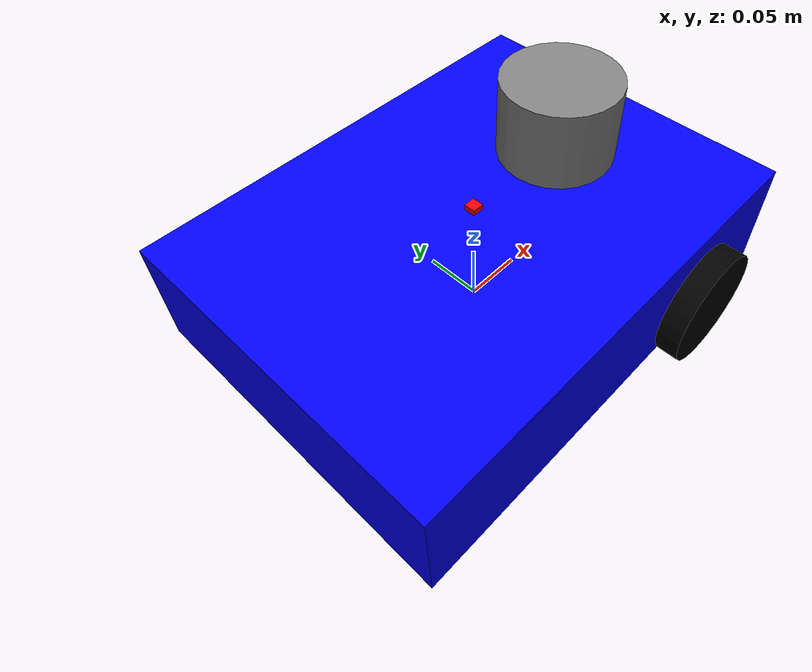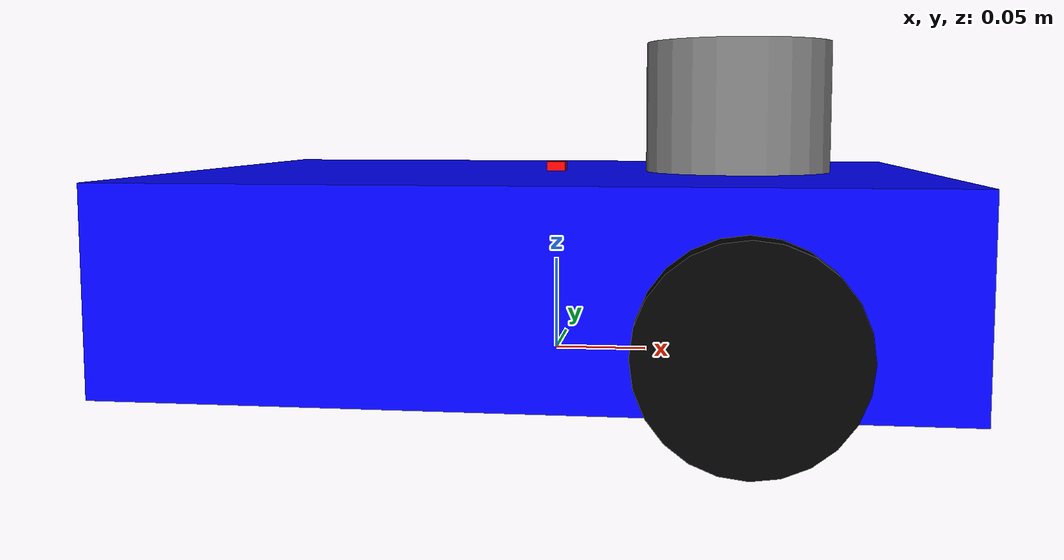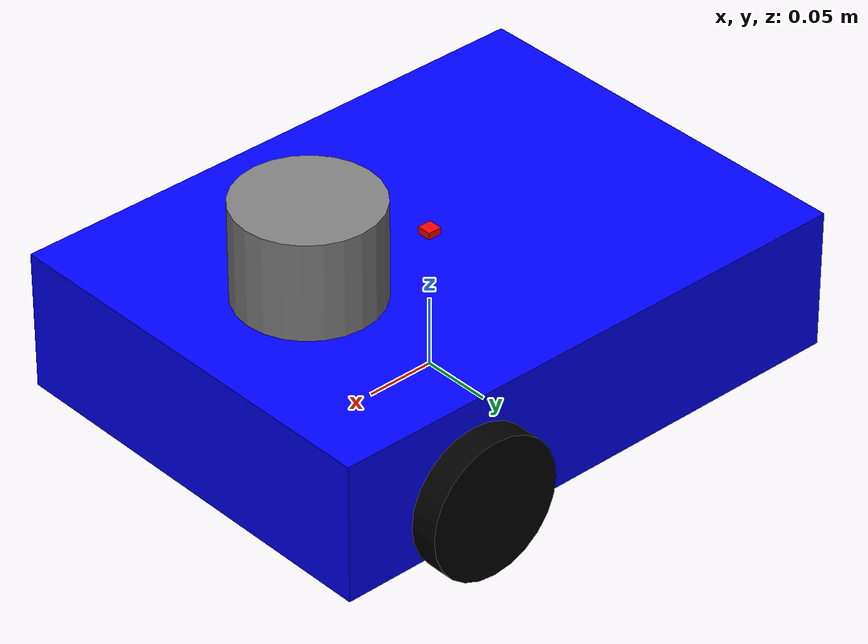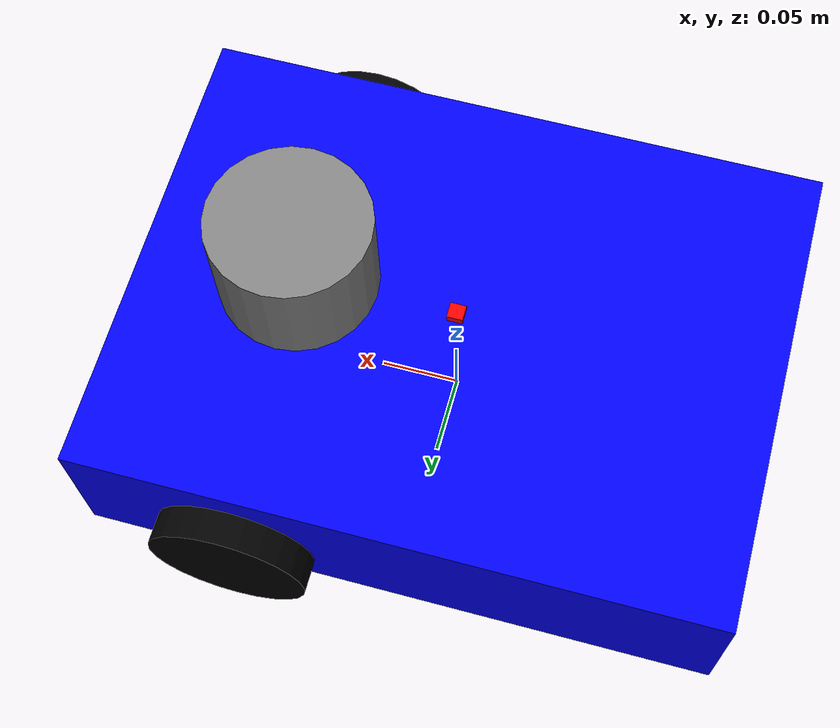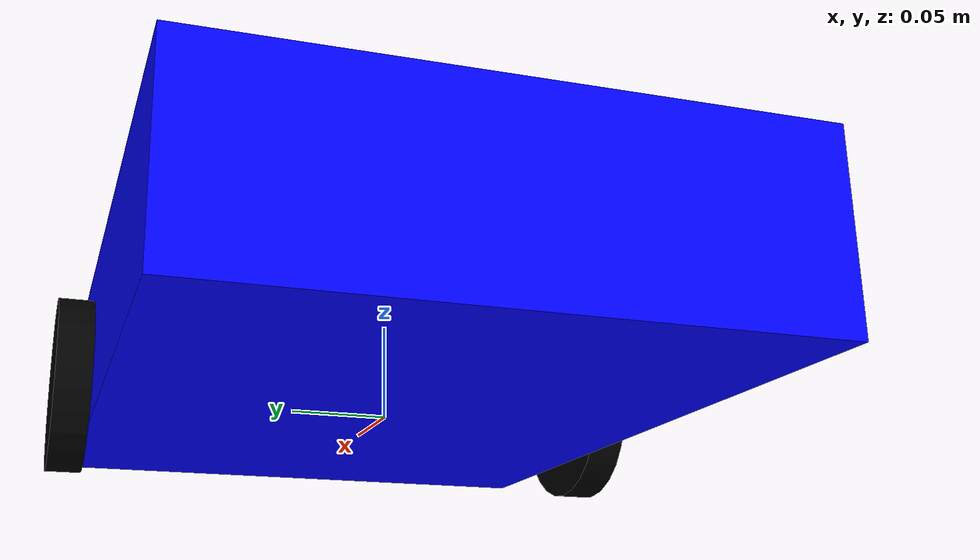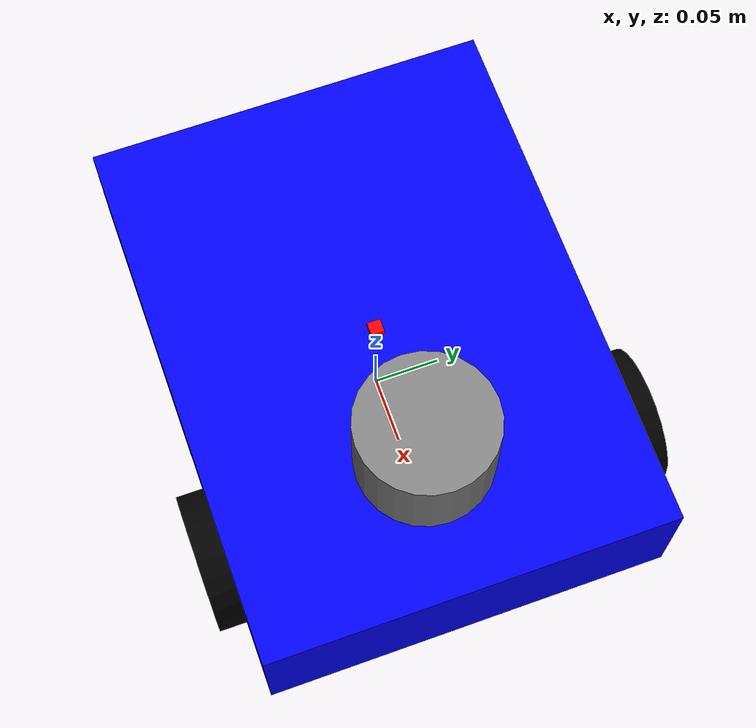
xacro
<?xml version="1.0"?>
<robot xmlns:xacro="http://www.ros.org/wiki/xacro" name="mobile_3d_lidar_robot">

  <!-- ==================== 参数定义 ==================== -->
  <xacro:property name="base_len" value="0.4"/>
  <xacro:property name="base_width" value="0.3"/>
  <xacro:property name="base_height" value="0.1"/>
  <xacro:property name="wheel_radius" value="0.05"/>
  <xacro:property name="wheel_width" value="0.02"/>

  <!-- ==================== 机器人本体 ==================== -->

  <!-- Base Footprint (用于导航的投影中心) -->
  <link name="base_footprint"/>

  <joint name="base_joint" type="fixed">
    <parent link="base_footprint"/>
    <child link="base_link"/>
    <origin xyz="0 0 ${wheel_radius}" rpy="0 0 0"/>
  </joint>

  <!-- Base Link (车体) -->
  <link name="base_link">
    <visual>
      <geometry>
        <box size="${base_len} ${base_width} ${base_height}"/>
      </geometry>
      <material name="blue">
        <color rgba="0 0 1 1"/>
      </material>
    </visual>
    <collision>
      <geometry>
        <box size="${base_len} ${base_width} ${base_height}"/>
      </geometry>
    </collision>
    <inertial>
      <mass value="5.0"/>
      <inertia ixx="0.1" ixy="0" ixz="0" iyy="0.1" iyz="0" izz="0.1"/>
    </inertial>
  </link>

  <!-- ==================== 驱动轮系统 ==================== -->

  <!-- 宏定义：创建轮子 -->
  <xacro:macro name="wheel" params="prefix reflect">
    <link name="${prefix}_wheel">
      <visual>
        <geometry>
          <cylinder radius="${wheel_radius}" length="${wheel_width}"/>
        </geometry>
        <material name="black">
          <color rgba="0 0 0 1"/>
        </material>
      </visual>
      <collision>
        <geometry>
          <cylinder radius="${wheel_radius}" length="${wheel_width}"/>
        </geometry>
      </collision>
      <inertial>
        <mass value="0.5"/>
        <inertia ixx="0.01" ixy="0" ixz="0" iyy="0.01" iyz="0" izz="0.01"/>
      </inertial>
    </link>

    <joint name="${prefix}_wheel_joint" type="continuous">
      <parent link="base_link"/>
      <child link="${prefix}_wheel"/>
      <origin xyz="0.1 ${reflect * (base_width/2 + wheel_width/2)} -0.02" rpy="-1.5708 0 0"/>
      <axis xyz="0 0 1"/>
    </joint>
  </xacro:macro>

  <!-- 生成左右轮 -->
  <xacro:wheel prefix="left" reflect="1"/>
  <xacro:wheel prefix="right" reflect="-1"/>

  <!-- 万向轮 (支撑轮，防止车体由于重力翻倒) -->
  <link name="caster_wheel">
    <visual>
      <geometry>
        <sphere radius="0.03"/>
      </geometry>
      <material name="white">
        <color rgba="1 1 1 1"/>
      </material>
    </visual>
    <collision>
      <geometry>
        <sphere radius="0.03"/>
      </geometry>
      <surface>
        <friction>
          <ode>
            <mu>0.0</mu> <!-- 无摩擦，方便转动 -->
            <mu2>0.0</mu2>
          </ode>
        </friction>
      </surface>
    </collision>
    <inertial>
      <mass value="0.1"/>
      <inertia ixx="0.001" ixy="0" ixz="0" iyy="0.001" iyz="0" izz="0.001"/>
    </inertial>
  </link>

  <joint name="caster_joint" type="fixed">
    <parent link="base_link"/>
    <child link="caster_wheel"/>
    <origin xyz="-0.15 0 -0.02" rpy="0 0 0"/>
  </joint>

  <!-- ==================== 3D LiDAR (32线) ==================== -->

  <link name="velodyne_base_link">
    <visual>
      <geometry>
        <cylinder radius="0.05" length="0.07"/>
      </geometry>
      <material name="grey">
        <color rgba="0.5 0.5 0.5 1"/>
      </material>
    </visual>
    <collision>
      <geometry>
        <cylinder radius="0.05" length="0.07"/>
      </geometry>
    </collision>
    <inertial>
      <mass value="0.8"/>
      <inertia ixx="0.001" ixy="0" ixz="0" iyy="0.001" iyz="0" izz="0.001"/>
    </inertial>
  </link>

  <joint name="lidar_joint" type="fixed">
    <parent link="base_link"/>
    <child link="velodyne_base_link"/>
    <origin xyz="0.1 0 ${base_height/2 + 0.035}" rpy="0 0 0"/>
  </joint>

  <!-- Gazebo 3D LiDAR 插件配置 -->
<gazebo reference="velodyne_base_link">
    <!-- 如果在虚拟机中，请务必使用 type="ray" -->
    <sensor type="ray" name="velodyne-VLP16">
      <pose>0 0 0 0 0 0</pose>
      <visualize>false</visualize>
      <update_rate>10</update_rate>
      <ray>
        <scan>
          <horizontal>
            <samples>360</samples> <!-- 稍微降低采样数测试稳定性 -->
            <resolution>1</resolution>
            <min_angle>-3.14159</min_angle>
            <max_angle>3.14159</max_angle>
          </horizontal>
          <vertical>
            <samples>32</samples> <!-- VLP-16通常是16线，你要32线就写32 -->
            <resolution>1</resolution>
            <min_angle>-0.261799</min_angle>
            <max_angle>0.261799</max_angle>
          </vertical>
        </scan>
        <range>
          <min>0.3</min>
          <max>100.0</max>
          <resolution>0.001</resolution>
        </range>
        <noise>
          <type>gaussian</type>
          <mean>0.0</mean>
          <stddev>0.0</stddev>
        </noise>
      </ray>
      <!-- 使用标准 Velodyne 插件 -->
      <plugin name="gazebo_ros_laser_controller" filename="libgazebo_ros_velodyne_laser.so">
        <topicName>/velodyne_points</topicName>
        <frameName>velodyne_base_link</frameName>
        <min_range>0.9</min_range>
        <max_range>130.0</max_range>
        <gaussianNoise>0.008</gaussianNoise>
        <!-- 关键：有些版本需要这个参数来激活 PointCloud2 输出 -->
        <organize_cloud>false</organize_cloud>
      </plugin>
    </sensor>
  </gazebo>

  <!-- ==================== 差速驱动插件 (控制移动) ==================== -->
  <gazebo>
    <plugin name="differential_drive_controller" filename="libgazebo_ros_diff_drive.so">
      <updateRate>50</updateRate>
      <leftJoint>left_wheel_joint</leftJoint>
      <rightJoint>right_wheel_joint</rightJoint>
      <wheelSeparation>${base_width + wheel_width}</wheelSeparation>
      <wheelDiameter>${wheel_radius * 2}</wheelDiameter>
      <wheelAcceleration>1.0</wheelAcceleration>
      <wheelTorque>20</wheelTorque>
      <commandTopic>cmd_vel</commandTopic>
      <odometryTopic>odom</odometryTopic>
      <odometryFrame>odom</odometryFrame>
      <robotBaseFrame>base_footprint</robotBaseFrame>
      <publishWheelTF>false</publishWheelTF>
      <publishOdomTF>false</publishOdomTF>
      <publishWheelJointState>true</publishWheelJointState>
      <legacyMode>false</legacyMode>
    </plugin>
  </gazebo>

  <!-- ==================== IMU 传感器 ==================== -->
  <link name="imu_link">
    <visual>
      <geometry>
        <box size="0.01 0.01 0.01"/>
      </geometry>
      <material name="red">
        <color rgba="1 0 0 1"/>
      </material>
    </visual>
    <inertial>
      <mass value="0.01"/>
      <inertia ixx="0.000001" ixy="0" ixz="0" iyy="0.000001" iyz="0" izz="0.000001"/>
    </inertial>
  </link>

  <joint name="imu_joint" type="fixed">
    <parent link="base_link"/>
    <child link="imu_link"/>
    <origin xyz="0 0 0.05" rpy="0 0 0"/>
  </joint>

  <gazebo reference="imu_link">
    <sensor name="imu_sensor" type="imu">
      <always_on>true</always_on>
      <update_rate>200</update_rate> <!-- IMU typically has a higher update rate -->
      <visualize>true</visualize>
      <topic>/imu/data</topic>
      <plugin filename="libgazebo_ros_imu_sensor.so" name="imu_plugin">
        <topicName>/imu/data</topicName>
        <updateRateHZ>200.0</updateRateHZ>
        <gaussianNoise>0.0001</gaussianNoise>
        <xyzOffset>0 0 0</xyzOffset>
        <rpyOffset>0 0 0</rpyOffset>
        <frameName>imu_link</frameName>
      </plugin>
    </sensor>
  </gazebo>

  <!-- ==================== 真值数据 (Ground Truth) ==================== -->
  <gazebo>
    <plugin name="p3d_base_controller" filename="libgazebo_ros_p3d.so">
      <alwaysOn>true</alwaysOn>
      <updateRate>200.0</updateRate>
      <bodyName>base_footprint</bodyName>
      <topicName>/ground_truth/state</topicName>
      <gaussianNoise>0.0</gaussianNoise>
      <frameName>map</frameName>
      <xyzOffsets>0 0 0</xyzOffsets>
      <rpyOffsets>0 0 0</rpyOffsets>
    </plugin>
  </gazebo>

</robot>
